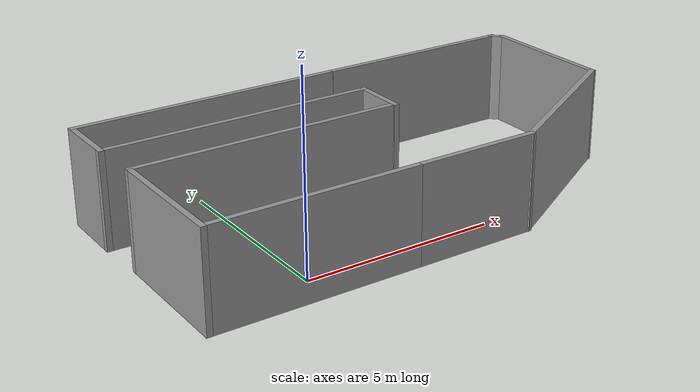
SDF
<?xml version='1.0'?>
<sdf version='1.7'>
  <model name='my_room.world'>
    <pose>3.44851 2.3164 0 0 -0 0</pose>
    <link name='Wall_1'>
      <collision name='Wall_1_Collision'>
        <geometry>
          <box>
            <size>5.25 0.15 2.5</size>
          </box>
        </geometry>
        <pose>0 0 1.25 0 -0 0</pose>
      </collision>
      <visual name='Wall_1_Visual'>
        <pose>0 0 1.25 0 -0 0</pose>
        <geometry>
          <box>
            <size>5.25 0.15 2.5</size>
          </box>
        </geometry>
        <material>
          <script>
            <uri>file://media/materials/scripts/gazebo.material</uri>
            <name>Gazebo/Grey</name>
          </script>
          <ambient>1 1 1 1</ambient>
        </material>
        <meta>
          <layer>0</layer>
        </meta>
      </visual>
      <pose>-3.61851 -3.1364 0 0 -0 3.14159</pose>
    </link>
    <link name='Wall_12'>
      <collision name='Wall_12_Collision'>
        <geometry>
          <box>
            <size>7 0.15 2.5</size>
          </box>
        </geometry>
        <pose>0 0 1.25 0 -0 0</pose>
      </collision>
      <visual name='Wall_12_Visual'>
        <pose>0 0 1.25 0 -0 0</pose>
        <geometry>
          <box>
            <size>7 0.15 2.5</size>
          </box>
        </geometry>
        <material>
          <script>
            <uri>file://media/materials/scripts/gazebo.material</uri>
            <name>Gazebo/Grey</name>
          </script>
          <ambient>1 1 1 1</ambient>
        </material>
        <meta>
          <layer>0</layer>
        </meta>
      </visual>
      <pose>-2.89351 0.203597 0 0 -0 3.14159</pose>
    </link>
    <link name='Wall_13'>
      <collision name='Wall_13_Collision'>
        <geometry>
          <box>
            <size>3.5 0.15 2.5</size>
          </box>
        </geometry>
        <pose>0 0 1.25 0 -0 0</pose>
      </collision>
      <visual name='Wall_13_Visual'>
        <pose>0 0 1.25 0 -0 0</pose>
        <geometry>
          <box>
            <size>3.5 0.15 2.5</size>
          </box>
        </geometry>
        <material>
          <script>
            <uri>file://media/materials/scripts/gazebo.material</uri>
            <name>Gazebo/Grey</name>
          </script>
          <ambient>1 1 1 1</ambient>
        </material>
        <meta>
          <layer>0</layer>
        </meta>
      </visual>
      <pose>-6.31851 -1.4714 0 0 -0 -1.5708</pose>
    </link>
    <link name='Wall_16'>
      <collision name='Wall_16_Collision'>
        <geometry>
          <box>
            <size>3.25 0.15 2.5</size>
          </box>
        </geometry>
        <pose>0 0 1.25 0 -0 0</pose>
      </collision>
      <visual name='Wall_16_Visual'>
        <pose>0 0 1.25 0 -0 0</pose>
        <geometry>
          <box>
            <size>3.25 0.15 2.5</size>
          </box>
        </geometry>
        <material>
          <script>
            <uri>file://media/materials/scripts/gazebo.material</uri>
            <name>Gazebo/Grey</name>
          </script>
          <ambient>1 1 1 1</ambient>
        </material>
        <meta>
          <layer>0</layer>
        </meta>
      </visual>
      <pose>0.631491 -3.1364 0 0 -0 0</pose>
    </link>
    <link name='Wall_18'>
      <collision name='Wall_18_Collision'>
        <geometry>
          <box>
            <size>1.5 0.15 2.5</size>
          </box>
        </geometry>
        <pose>0 0 1.25 0 -0 0</pose>
      </collision>
      <visual name='Wall_18_Visual'>
        <pose>0 0 1.25 0 -0 0</pose>
        <geometry>
          <box>
            <size>1.5 0.15 2.5</size>
          </box>
        </geometry>
        <material>
          <script>
            <uri>file://media/materials/scripts/gazebo.material</uri>
            <name>Gazebo/Grey</name>
          </script>
          <ambient>1 1 1 1</ambient>
        </material>
        <meta>
          <layer>0</layer>
        </meta>
      </visual>
      <pose>0.687229 0.859926 0 0 -0 -1.5708</pose>
    </link>
    <link name='Wall_20'>
      <collision name='Wall_20_Collision'>
        <geometry>
          <box>
            <size>7.25 0.15 2.5</size>
          </box>
        </geometry>
        <pose>0 0 1.25 0 -0 0</pose>
      </collision>
      <visual name='Wall_20_Visual'>
        <pose>0 0 1.25 0 -0 0</pose>
        <geometry>
          <box>
            <size>7.25 0.15 2.5</size>
          </box>
        </geometry>
        <material>
          <script>
            <uri>file://media/materials/scripts/gazebo.material</uri>
            <name>Gazebo/Grey</name>
          </script>
          <ambient>1 1 1 1</ambient>
        </material>
        <meta>
          <layer>0</layer>
        </meta>
      </visual>
      <pose>-2.86277 1.53493 0 0 -0 3.14159</pose>
    </link>
    <link name='Wall_21'>
      <collision name='Wall_21_Collision'>
        <geometry>
          <box>
            <size>1.75 0.15 2.5</size>
          </box>
        </geometry>
        <pose>0 0 1.25 0 -0 0</pose>
      </collision>
      <visual name='Wall_21_Visual'>
        <pose>0 0 1.25 0 -0 0</pose>
        <geometry>
          <box>
            <size>1.75 0.15 2.5</size>
          </box>
        </geometry>
        <material>
          <script>
            <uri>file://media/materials/scripts/gazebo.material</uri>
            <name>Gazebo/Grey</name>
          </script>
          <ambient>1 1 1 1</ambient>
        </material>
        <meta>
          <layer>0</layer>
        </meta>
      </visual>
      <pose>-6.41277 2.33493 0 0 -0 1.5708</pose>
    </link>
    <link name='Wall_22'>
      <collision name='Wall_22_Collision'>
        <geometry>
          <box>
            <size>7.25 0.15 2.5</size>
          </box>
        </geometry>
        <pose>0 0 1.25 0 -0 0</pose>
      </collision>
      <visual name='Wall_22_Visual'>
        <pose>0 0 1.25 0 -0 0</pose>
        <geometry>
          <box>
            <size>7.25 0.15 2.5</size>
          </box>
        </geometry>
        <material>
          <script>
            <uri>file://media/materials/scripts/gazebo.material</uri>
            <name>Gazebo/Grey</name>
          </script>
          <ambient>1 1 1 1</ambient>
        </material>
        <meta>
          <layer>0</layer>
        </meta>
      </visual>
      <pose>-2.86277 3.13493 0 0 -0 0</pose>
    </link>
    <link name='Wall_24'>
      <collision name='Wall_24_Collision'>
        <geometry>
          <box>
            <size>5 0.15 2.5</size>
          </box>
        </geometry>
        <pose>0 0 1.25 0 -0 0</pose>
      </collision>
      <visual name='Wall_24_Visual'>
        <pose>0 0 1.25 0 -0 0</pose>
        <geometry>
          <box>
            <size>5 0.15 2.5</size>
          </box>
        </geometry>
        <material>
          <script>
            <uri>file://media/materials/scripts/gazebo.material</uri>
            <name>Gazebo/Grey</name>
          </script>
          <ambient>1 1 1 1</ambient>
        </material>
        <meta>
          <layer>0</layer>
        </meta>
      </visual>
      <pose>4.2816 -1.9239 0 0 -0 0.523599</pose>
    </link>
    <link name='Wall_25'>
      <collision name='Wall_25_Collision'>
        <geometry>
          <box>
            <size>3.75 0.15 2.5</size>
          </box>
        </geometry>
        <pose>0 0 1.25 0 -0 0</pose>
      </collision>
      <visual name='Wall_25_Visual'>
        <pose>0 0 1.25 0 -0 0</pose>
        <geometry>
          <box>
            <size>3.75 0.15 2.5</size>
          </box>
        </geometry>
        <material>
          <script>
            <uri>file://media/materials/scripts/gazebo.material</uri>
            <name>Gazebo/Grey</name>
          </script>
          <ambient>1 1 1 1</ambient>
        </material>
        <meta>
          <layer>0</layer>
        </meta>
      </visual>
      <pose>6.38171 1.0886 0 0 -0 1.5708</pose>
    </link>
    <link name='Wall_26'>
      <collision name='Wall_26_Collision'>
        <geometry>
          <box>
            <size>0.49103 0.15 2.5</size>
          </box>
        </geometry>
        <pose>0 0 1.25 0 -0 0</pose>
      </collision>
      <visual name='Wall_26_Visual'>
        <pose>0 0 1.25 0 -0 0</pose>
        <geometry>
          <box>
            <size>0.49103 0.15 2.5</size>
          </box>
        </geometry>
        <material>
          <script>
            <uri>file://media/materials/scripts/gazebo.material</uri>
            <name>Gazebo/Grey</name>
          </script>
          <ambient>1 1 1 1</ambient>
        </material>
        <meta>
          <layer>0</layer>
        </meta>
      </visual>
      <pose>6.26269 3.0107 0 0 -0 2.34344</pose>
    </link>
    <link name='Wall_27'>
      <collision name='Wall_27_Collision'>
        <geometry>
          <box>
            <size>5.5 0.15 2.5</size>
          </box>
        </geometry>
        <pose>0 0 1.25 0 -0 0</pose>
      </collision>
      <visual name='Wall_27_Visual'>
        <pose>0 0 1.25 0 -0 0</pose>
        <geometry>
          <box>
            <size>5.5 0.15 2.5</size>
          </box>
        </geometry>
        <material>
          <script>
            <uri>file://media/materials/scripts/gazebo.material</uri>
            <name>Gazebo/Grey</name>
          </script>
          <ambient>1 1 1 1</ambient>
        </material>
        <meta>
          <layer>0</layer>
        </meta>
      </visual>
      <pose>3.49511 3.1328 0 0 -0 3.14159</pose>
    </link>
    <static>1</static>
  </model>
</sdf>
